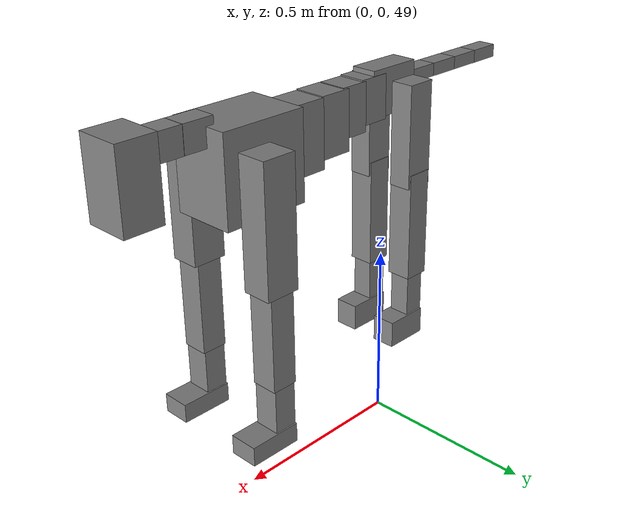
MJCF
<mujoco model="dog">

    <default>
        <joint armature="0.02" stiffness="1" damping="0.2" limited="true" />
        <geom condim="3" friction="1 0.05 0.05" margin="0.01" />
        <motor ctrllimited="true" ctrlrange="-1.0 1.0" forcelimited="true" gear="50" />
    </default>

    <compiler inertiafromgeom="true" angle="radian" />

    <option timestep="0.016" iterations="50" tolerance="1e-10" solver="Newton" jacobian="dense" cone="pyramidal" />

    <size nconmax="20000" njmax="60000" nstack="5000000" />
    <visual>
        <map force="0.1" zfar="30" />
        <rgba haze="0.15 0.25 0.35 1" />
        <quality shadowsize="2048" />
        <global offwidth="800" offheight="800" />
    </visual>

    <asset>
        <texture type="skybox" builtin="gradient" rgb1="0.3 0.5 0.7" rgb2="0 0 0" width="512" height="512" />
        <texture name="texplane" type="2d" builtin="checker" rgb1=".2 .3 .4" rgb2=".1 0.15 0.2" width="512" height="512" mark="cross" markrgb=".8 .8 .8" />
        <texture name="texgeom" type="cube" builtin="flat" mark="cross" width="127" height="1278" rgb1="0.8 0.6 0.4" rgb2="0.8 0.6 0.4" markrgb="1 1 1" random="0.01" />

        <material name="matplane" reflectance="0.3" texture="texplane" texrepeat="1 1" texuniform="true" />
        <material name="matgeom" texture="texgeom" texuniform="true" rgba="0.8 0.6 .4 1" />
    </asset>

    <worldbody>
        <geom name="floor" pos="0 0 0" size="0 0 .25" type="plane" material="matplane" condim="3" />

        <light directional="false" diffuse=".2 .2 .2" specular="0 0 0" pos="0 0 5" dir="0 0 -1" castshadow="false" />
        <light mode="targetbodycom" target="torso" directional="false" diffuse=".8 .8 .8" specular="0.3 0.3 0.3" pos="0 0 4.0" dir="0 0 -1" />

        <body name="root" pos="0 0 50">
            <freejoint name="root_1" />
            <geom type="box" pos="0 0 -0.02" size="0.0774  0.0358  0.063" density="2030" />

            <body name="spine1" pos="0.054 0 0">
                <joint name="spine1_y" axis="0 1 0" range="0 0.7" limited="true" />
                <geom type="box" pos="0.02375 0 -0.03" size="0.04375  0.0375  0.05985" density="2030" />

                <body name="spine2" pos="0.0612 0 0">
                    <joint name="spine2_y" axis="0 1 0" range="-0.15 0.15" limited="true" />
                    <geom type="box" pos="0.03555  0  -0.04" size="0.04055  0.039  0.06615" density="2030" />

                    <body name="spine3" pos="0.0730 0 0">
                        <joint name="spine3_y" axis="0 1 0" range="-0.15 0.15" limited="true" />
                        <geom type="box" pos="0.03555  0  -0.057" size="0.04555  0.0445  0.081" density="2030" />

                        <body name="spine4" pos="0.0780 0 0">
                            <joint name="spine4_y" axis="0 1 0" range="-0.15 0.15" limited="true" />
                            <geom type="box" pos="0.05265  0  -0.07" size="0.05265  0.045  0.09135" density="2030" />

                            <body name="torso" pos="0.1082 0 0">
                                <joint name="torso_y" axis="0 1 0" range="-0.15 0.15" limited="true" />
                                <geom type="box" pos="0.11925  0  -0.085" size="0.11925  0.085  0.11745" density="2030" />

                                <body name="neck1" pos="0.2160  0   0.0180">
                                    <joint name="neck1_y" axis="0 1 0" range="-1.2  -1" limited="true" />
                                    <geom type="box" pos="0.0423  0  0" size="0.0423  0.03  0.036" density="2325" />

                                    <body name="neck2" pos="0.0853  0  0">
                                        <joint name="neck2_y" axis="0 1 0" range="0.1  0" limited="true" />
                                        <geom type="box" pos="0.0423  0  0" size="0.0423  0.03  0.036" density="2325" />

                                        <body name="head" pos="0.0853  0  0">
                                            <joint name="head_y" axis="0 1 0" range="-0.3  -0.2" limited="true" />
                                            <geom type="box" pos="0.0531  0  -0.055" size="0.0531  0.06  0.1044" density="4030" />

                                        </body>
                                    </body>
                                </body>

                                <body name="front_shoulder" pos="0.156  0   -0.0480">
                                    <joint name="front_shoulder_y" axis="0 1 0" range="-1 1.5" limited="true" />
                                    <geom type="box" pos="0 0.13 -0.1441" size="0.0467  0.0399  0.1708" density="1158" />
                                    <geom type="box" pos="0 -0.13 -0.1441" size="0.0467  0.0399  0.1708" density="1158" />

                                    <body name="front_elbow" pos="0  0  -0.2883">
                                        <joint name="front_elbow_y" axis="0 1 0" range="-2 0" limited="true" />
                                        <geom type="box" pos="0 0.13 -0.1385" size="0.0349  0.0357  0.1385" density="1081" />
                                        <geom type="box" pos="0 -0.13 -0.1385" size="0.0349  0.0357  0.1385" density="1081" />

                                        <body name="front_wrist" pos="0  0  -0.2769">
                                            <joint name="front_wrist_y" axis="0 1 0" range="-0.2 0" limited="true" />
                                            <geom type="box" pos="0 0.13 -0.0670" size="0.0312  0.0347  0.0801" density="1664" />
                                            <geom type="box" pos="0 -0.13 -0.0670" size="0.0312  0.0347  0.0801" density="1664" />

                                            <body name="front_finger_end" pos="0  0  -0.1340">
                                                <joint name="front_finger_y" axis="0 1 0" range="-0.4 1" limited="true" />
                                                <geom type="box" pos="0.0388  0.13  -0.0111" size="0.0712  0.0388  0.0261" density="1515" />
                                                <geom type="box" pos="0.0388  -0.13  -0.0111" size="0.0712  0.0388  0.0261" density="1515" />

                                            </body>

                                        </body>
                                    </body>
                                </body>

                            </body>
                        </body>
                    </body>
                </body>
            </body>

            <body name="back_hip" pos="-0.03 0 -0.018">
                <joint name="back_hip_y" axis="0 1 0" range="-1.5 0.3" limited="true" />
                <geom type="box" pos="0 0.07 -0.1183" size="0.0404  0.0317  0.1411" density="1154" />
                <geom type="box" pos="0 -0.07 -0.1183" size="0.0404  0.0317  0.1411" density="1154" />

                <body name="back_knee" pos="0  0  -0.2366">
                    <joint name="back_knee_y" axis="0 1 0" range="0 2.8" limited="true" />
                    <geom type="box" pos="0 0.07 -0.1357" size="0.0353  0.0348  0.1512" density="1227" />
                    <geom type="box" pos="0 -0.07 -0.1357" size="0.0353  0.0348  0.1512" density="1227" />

                    <body name="back_ankle" pos="0  0  -0.2713">
                        <joint name="back_ankle_y" axis="0 1 0" range="-2.2 0" limited="true" />
                        <geom type="box" pos="0 0.07 -0.0732" size="0.0288  0.0288  0.0844" density="1284" />
                        <geom type="box" pos="0 -0.07 -0.0732" size="0.0288  0.0288  0.0844" density="1284" />

                        <body name="back_toe_end" pos="0  0  -0.1464">
                            <joint name="back_toe_y" axis="0 1 0" range="-0.4 1" limited="true" />
                            <geom type="box" pos="0.0335  0.07  -0.0221" size="0.0614  0.0335  0.0371" density="1515" />
                            <geom type="box" pos="0.0335  -0.07  -0.0221" size="0.0614  0.0335  0.0371" density="1515" />

                        </body>
                    </body>
                </body>
            </body>

            <body name="tail1" pos="-0.074 0 -0.006">
                <joint name="tail1_y" axis="0 1 0" range="-0.2 0.2" limited="true" />
                <geom type="box" pos="-0.0536  0  0" size="0.045  0.025  0.0175" density="1587" />

                <body name="tail2" pos="-0.09 0 0">
                    <joint name="tail2_y" axis="0 1 0" range="-0.2 0.2" limited="true" />
                    <geom type="box" pos="-0.0536  0  0" size="0.045  0.025  0.0175" density="1587" />

                    <body name="tail3" pos="-0.09 0 0">
                        <joint name="tail3_y" axis="0 1 0" range="-0.2 0.2" limited="true" />
                        <geom type="box" pos="-0.0536  0  0" size="0.045  0.025  0.0175" density="1587" />

                        <body name="tail4" pos="-0.09 0 0">
                            <joint name="tail4_y" axis="0 1 0" range="-0.2 0.2" limited="true" />
                            <geom type="box" pos="-0.0536  0  0" size="0.045  0.025  0.0175" density="1587" />

                        </body>
                    </body>
                </body>
            </body>
        </body>
    </worldbody>

    <actuator>
        <motor joint="spine1_y" forcerange="-150 150     " />
        <motor joint="spine2_y" forcerange="-150 150     " />
        <motor joint="spine3_y" forcerange="-150 150     " />
        <motor joint="spine4_y" forcerange="-150 150     " />
        <motor joint="torso_y" forcerange="-150 150     " />
        <motor joint="neck1_y" forcerange="-100 100       " />
        <motor joint="neck2_y" forcerange="-100 100       " />
        <motor joint="head_y" forcerange="-150 150       " />
        <motor joint="front_shoulder_y" forcerange="-178.38 187.87" />
        <motor joint="front_elbow_y" forcerange="-199.15 160.18" />
        <motor joint="front_wrist_y" forcerange="-149.11 128.32" />
        <motor joint="front_finger_y" forcerange="-99.71 67.43" />
        <motor joint="back_hip_y" forcerange="-311.86 310.47" />
        <motor joint="back_knee_y" forcerange="-393.83 311.66" />
        <motor joint="back_angle_y" forcerange="-174.46 185.76" />
        <motor joint="back_toe_y" forcerange="-107.49 80.28" />
        <motor joint="tail1_y" forcerange="-50 50     " />
        <motor joint="tail2_y" forcerange="-50 50     " />
        <motor joint="tail3_y" forcerange="-50 50     " />
        <motor joint="tail4_y" forcerange="-50 50     " />
    </actuator>
</mujoco>
